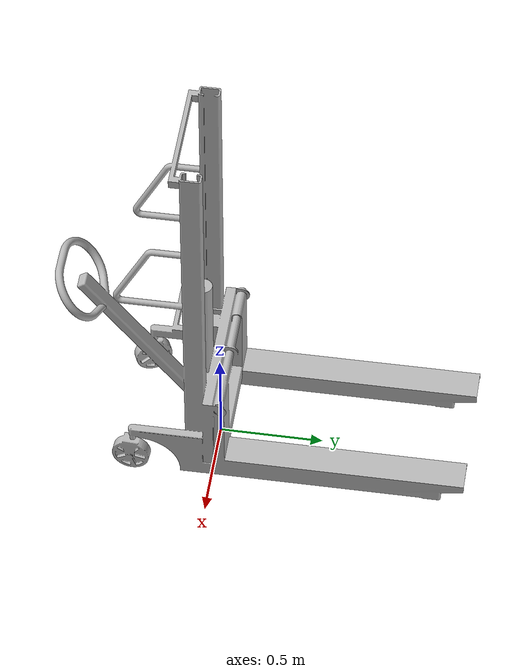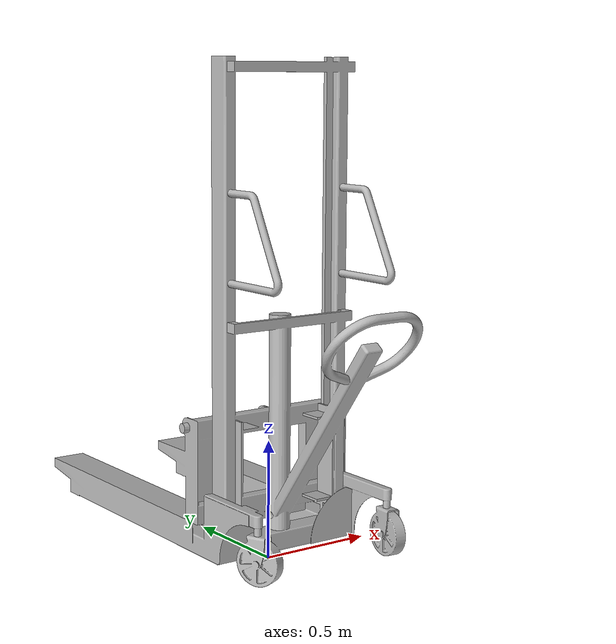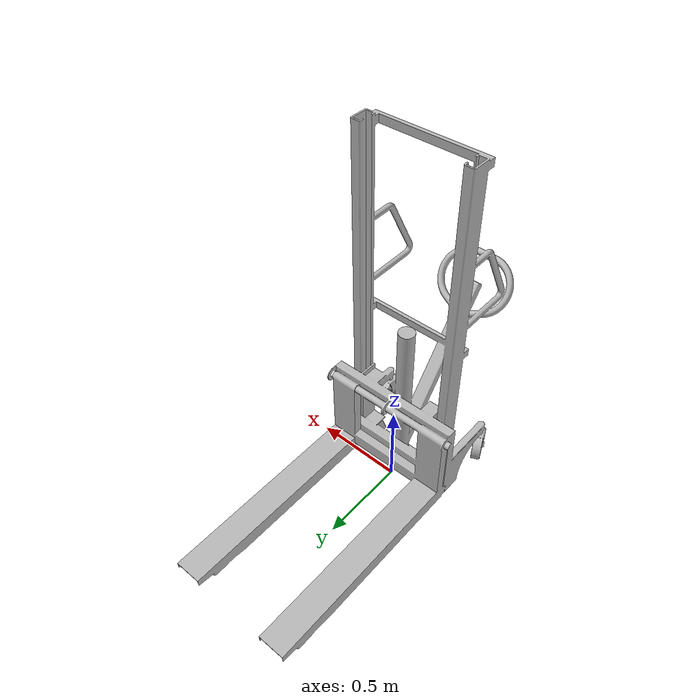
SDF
<?xml version="1.0" ?>
<sdf version="1.6">
  <model name="Manual_Forklift">
    <link name="link">
      <collision name="collision">
        <geometry>
          <mesh>
            <scale>1 1 1</scale>
            <uri>model://Manual_Forklift/meshes/Manual_Forklift.dae</uri>
          </mesh>
        </geometry>
        <max_contacts>10</max_contacts>
          <surface>
            <bounce/>
            <friction>
              <ode>
                <mu>1</mu>
                <mu2>1</mu2>
              </ode>
            </friction>
          </surface>
      </collision>

      <visual name="visual">
        <geometry>
          <mesh>
            <scale>1 1 1</scale>
            <uri>model://Manual_Forklift/meshes/Manual_Forklift.dae</uri>
          </mesh>
        </geometry>
      </visual>
      <velocity_decay>
        <linear>0</linear>
        <angular>0</angular>
      </velocity_decay>
      <self_collide>0</self_collide>
      <inertial>
        <inertia>
          <ixx>1</ixx>
          <ixy>0</ixy>
          <ixz>0</ixz>
          <iyy>1</iyy>
          <iyz>0</iyz>
          <izz>1</izz>
        </inertia>
        <mass>1</mass>
      </inertial>
      <kinematic>0</kinematic>
      <gravity>1</gravity>
    </link>
  </model>
</sdf>
